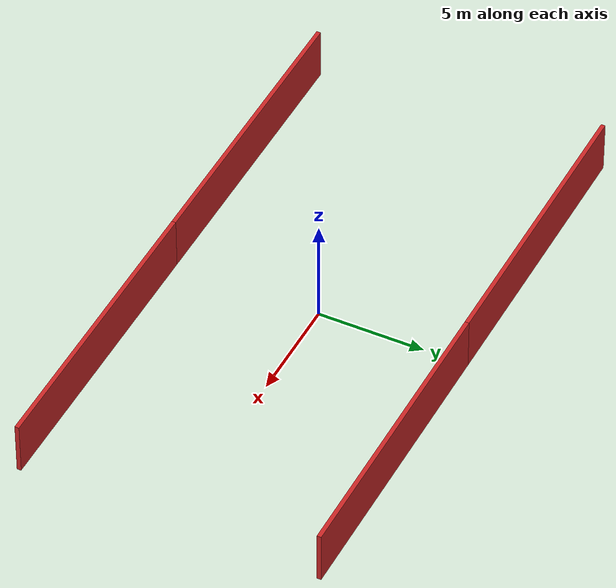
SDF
<?xml version='1.0'?>
<sdf version='1.4'>
  <model name='staright_28m'>
    <link name='Wall_26'>
      <collision name='Wall_26_Collision'>
        <geometry>
          <box>
            <size>14 0.2 2.5</size>
          </box>
        </geometry>
        <pose>0 0 1.25 0 -0 0</pose>
      </collision>
      <visual name='Wall_26_Visual'>
        <pose>0 0 1.25 0 -0 0</pose>
        <geometry>
          <box>
            <size>14 0.2 2.5</size>
          </box>
        </geometry>
        <material>
          <script>
             <uri>model://materials/scripts</uri>
             <uri>model://materials/textures</uri>
             <name>vrc/red_wall</name>
          </script>
        </material>
      </visual>
      <velocity_decay>
        <linear>0</linear>
        <angular>0</angular>
      </velocity_decay>
      <pose>-7 -7 0 0 -0 0</pose>
    </link>

    <link name='Wall_28'>
      <collision name='Wall_28_Collision'>
        <geometry>
          <box>
            <size>14 0.2 2.5</size>
          </box>
        </geometry>
        <pose>0 0 1.25 0 -0 0</pose>
      </collision>
      <visual name='Wall_28_Visual'>
        <pose>0 0 1.25 0 -0 0</pose>
        <geometry>
          <box>
            <size>14 0.2 2.5</size>
          </box>
        </geometry>
        <material>
          <script>
	      <uri>model://materials/scripts</uri>
              <uri>model://materials/textures</uri>
              <name>vrc/red_wall</name>

          </script>
        </material>
      </visual>
      <velocity_decay>
        <linear>0</linear>
        <angular>0</angular>
      </velocity_decay>
      <pose>-7 7 0 0 -0 0</pose>
    </link>
    <static>1</static>

    <link name='Wall_27'>
      <collision name='Wall_26_Collision'>
        <geometry>
          <box>
            <size>14 0.2 2.5</size>
          </box>
        </geometry>
        <pose>0 0 1.25 0 -0 0</pose>
      </collision>
      <visual name='Wall_26_Visual'>
        <pose>0 0 1.25 0 -0 0</pose>
        <geometry>
          <box>
            <size>14 0.2 2.5</size>
          </box>
        </geometry>
        <material>
          <script>
             <uri>model://materials/scripts</uri>
             <uri>model://materials/textures</uri>
             <name>vrc/red_wall</name>
          </script>
        </material>
      </visual>
      <velocity_decay>
        <linear>0</linear>
        <angular>0</angular>
      </velocity_decay>
      <pose>7 -7 0 0 -0 0</pose>
    </link>

    <link name='Wall_29'>
      <collision name='Wall_28_Collision'>
        <geometry>
          <box>
            <size>14 0.2 2.5</size>
          </box>
        </geometry>
        <pose>0 0 1.25 0 -0 0</pose>
      </collision>
      <visual name='Wall_28_Visual'>
        <pose>0 0 1.25 0 -0 0</pose>
        <geometry>
          <box>
            <size>14 0.2 2.5</size>
          </box>
        </geometry>
        <material>
          <script>
	      <uri>model://materials/scripts</uri>
              <uri>model://materials/textures</uri>
              <name>vrc/red_wall</name>

          </script>
        </material>
      </visual>
      <velocity_decay>
        <linear>0</linear>
        <angular>0</angular>
      </velocity_decay>
      <pose>7 7 0 0 -0 0</pose>
    </link>
    <static>1</static>
  </model>
</sdf>
